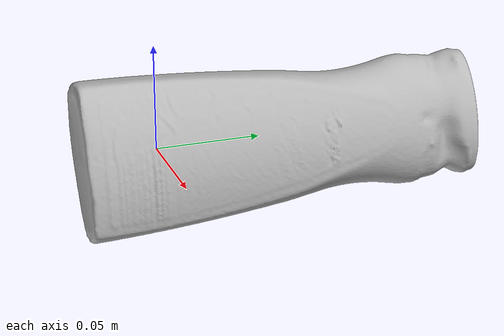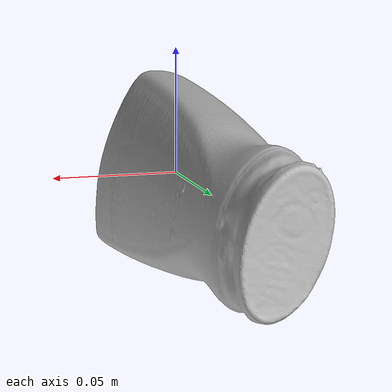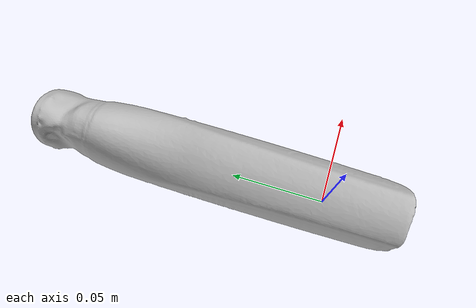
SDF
<?xml version='1.0'?>
<sdf version="1.4">
  <model name="ShowerGel">
    <static>false</static>
    <link name="link">
      <inertial>
        <pose>0.0025139871602055507 0.05296177242964802 0.00011936635206849237 1.5553725890392078 0.30001924623337917 3.138032350426531</pose>
        <mass>0.04121742717983794</mass>
        <inertia>
          <ixx>0.0001327894005259999</ixx>
          <ixy>-2.521172256457065e-20</ixy>
          <ixz>-3.438058790493695e-21</ixz>
          <iyy>0.00012389823953700386</iyy>
          <iyz>1.0725803550383743e-20</iyz>
          <izz>1.68666991637808e-05</izz>
        </inertia>
      </inertial>
      <collision name="collision">
        <geometry>
          <mesh>
            <!-- Use a downsampled mesh for collisions -->
            <uri>model:///ShowerGel/ShowerGel_250_collision.obj</uri>
	        </mesh>
        </geometry>
        <surface>
      </surface>
      </collision>
      <visual name="visual">
        <geometry>
          <mesh>
            <uri>model:///ShowerGel/ShowerGel_25k_tex.obj</uri>
	        </mesh>
        </geometry>
        <material>
          <script>
            <uri>model:///ShowerGel/ShowerGel.material</uri>
            <name>ShowerGel</name>
          </script>
        </material>
      </visual>
    </link>
  </model>
</sdf>
